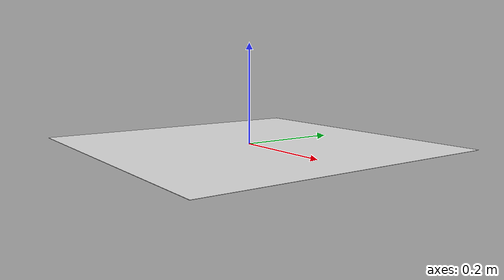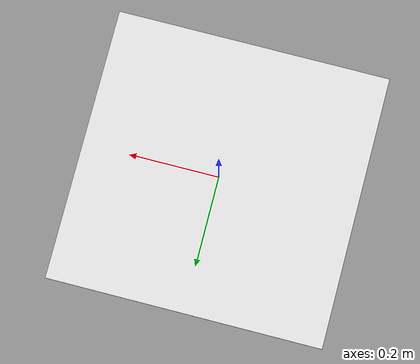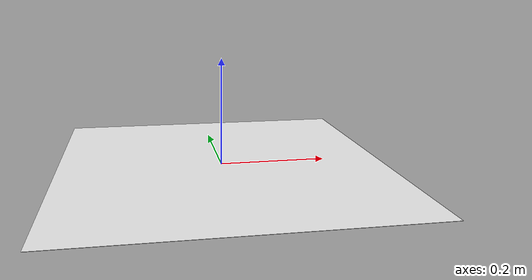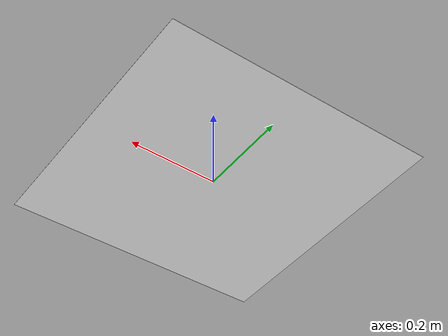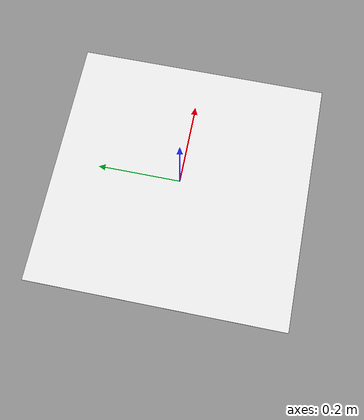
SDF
<?xml version="1.0"?>
<sdf version="1.9">
  <model name="gcp_5">
    <static>true</static>
    <link name="base">
      <pose>0 0 0.001 0 0 0</pose>
      <collision name="collision">
        <geometry>
          <box><size>0.6096 0.6096 0.001</size></box>
        </geometry>
      </collision>
      <visual name="visual">
        <geometry>
          <box><size>0.6096 0.6096 0.0005</size></box>
        </geometry>
        <material>
          <diffuse>1 1 1 1</diffuse>
          <specular>0 0 0 1</specular>
          <pbr>
            <metal>
              <albedo_map>model://gcp_5/materials/textures/gcp_5.png</albedo_map>
            </metal>
          </pbr>
        </material>
      </visual>
    </link>
  </model>
</sdf>
